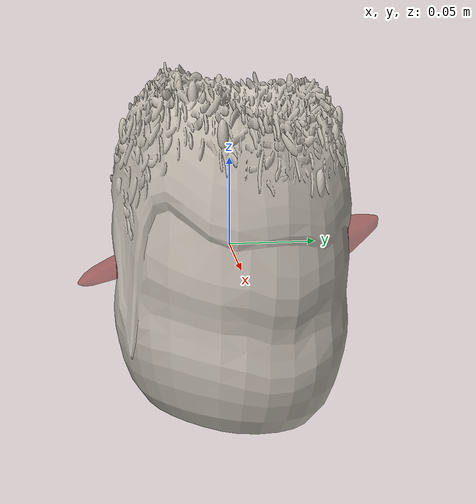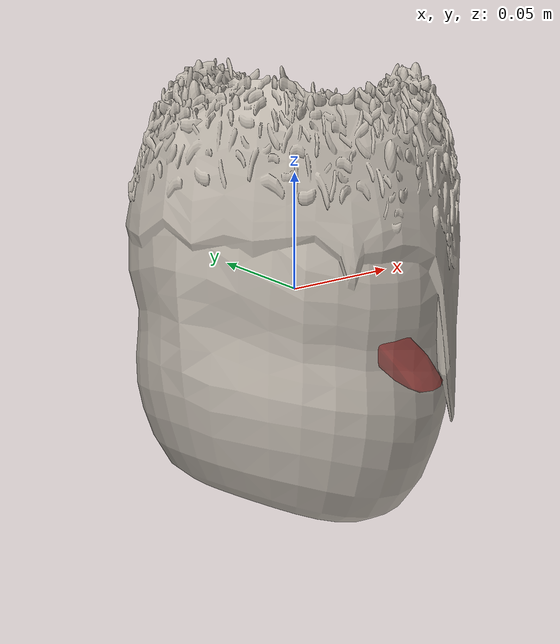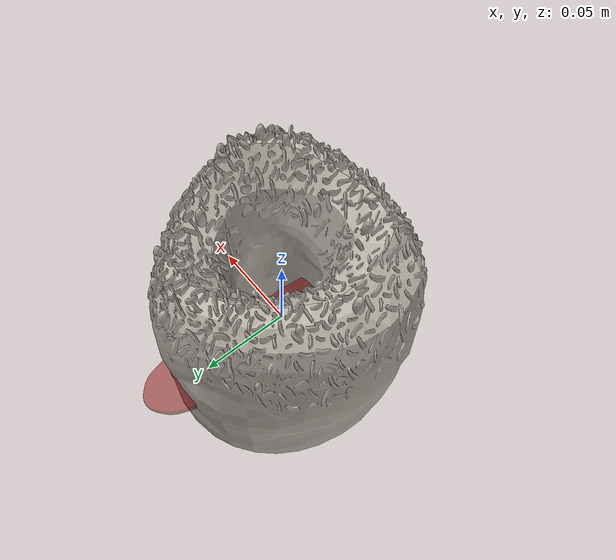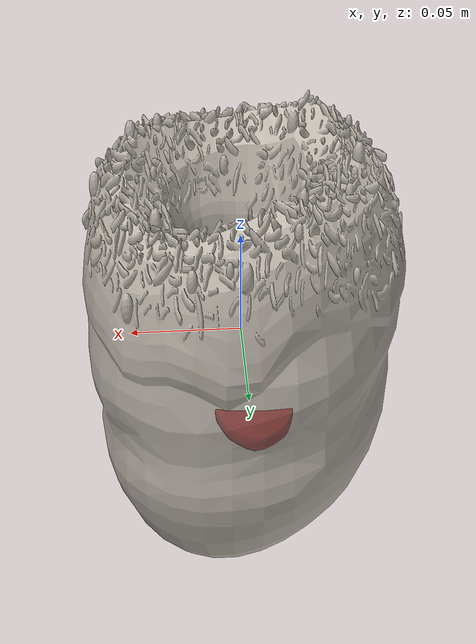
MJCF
<mujoco model="spoon_53">
  <asset>
    <mesh file="visual/model_normalized_0.obj" name="model_normalized_0_vis" scale="0.13999999999999996 0.13999999999999996 0.40" refquat="0.42755509343028203 0.0 0.0 -0.9039892931234433"/>
    <texture type="2d" name="image0" file="visual/image0.png"/>
    <material name="aiStandardSurface14" texture="image0" specular="0.5" shininess="0.25"/>
    <mesh file="collision/collision_mesh_collision_0.obj" name="spoon_collision_mesh_0" scale="0.13999999999999996 0.13999999999999996 0.40" refquat="0.42755509343028203 0.0 0.0 -0.9039892931234433"/>
    <mesh file="collision/collision_mesh_collision_1.obj" name="spoon_collision_mesh_1" scale="0.13999999999999996 0.13999999999999996 0.40" refquat="0.42755509343028203 0.0 0.0 -0.9039892931234433"/>
    <mesh file="collision/collision_mesh_collision_2.obj" name="spoon_collision_mesh_2" scale="0.13999999999999996 0.13999999999999996 0.40" refquat="0.42755509343028203 0.0 0.0 -0.9039892931234433"/>
    <mesh file="collision/collision_mesh_collision_3.obj" name="spoon_collision_mesh_3" scale="0.13999999999999996 0.13999999999999996 0.40" refquat="0.42755509343028203 0.0 0.0 -0.9039892931234433"/>
    <mesh file="collision/collision_mesh_collision_4.obj" name="spoon_collision_mesh_4" scale="0.13999999999999996 0.13999999999999996 0.40" refquat="0.42755509343028203 0.0 0.0 -0.9039892931234433"/>
  </asset>
  <default>
    <default class="region">
      <geom group="1" conaffinity="0" contype="0" rgba="0 1 0 0"/>
    </default>
    <default class="collision">
      <geom group="0" rgba="0.5 0 0 0.5" density="1000.0"/>
    </default>
  </default>
  <worldbody>
    <body>
      <body name="object">
        <geom solimp="0.998 0.998 0.001" solref="0.001 1" density="100" friction="0.95 0.3 0.1" type="mesh" mesh="model_normalized_0_vis" conaffinity="0" contype="0" group="1" material="aiStandardSurface14"/>
        <geom class="region" name="reg_bbox" type="box" pos="-0.0007043359987103629 0.00042327673979330446 0.0" size="0.01794281417513783 0.0870171637697129 0.020724"/>
        <geom mesh="spoon_collision_mesh_0" type="mesh" class="collision"/>
        <geom mesh="spoon_collision_mesh_1" type="mesh" class="collision"/>
        <geom mesh="spoon_collision_mesh_2" type="mesh" class="collision"/>
        <geom mesh="spoon_collision_mesh_3" type="mesh" class="collision"/>
        <geom mesh="spoon_collision_mesh_4" type="mesh" class="collision"/>
      </body>
    </body>
  </worldbody>
</mujoco>
